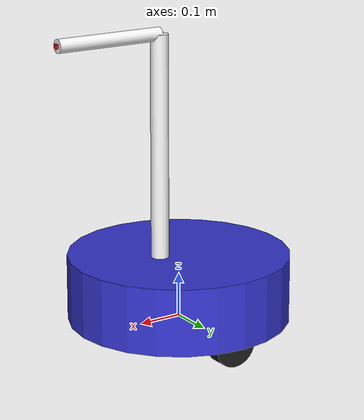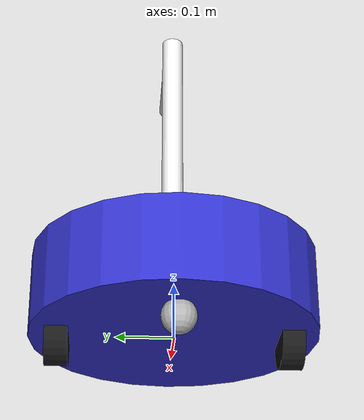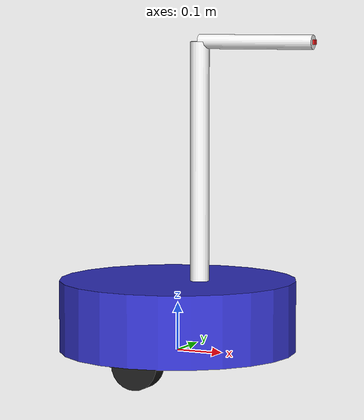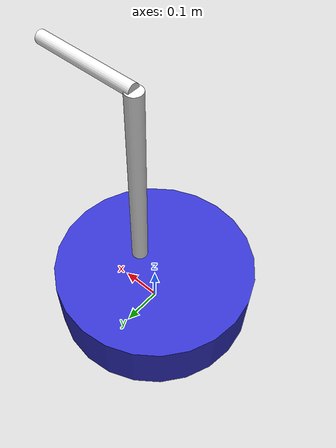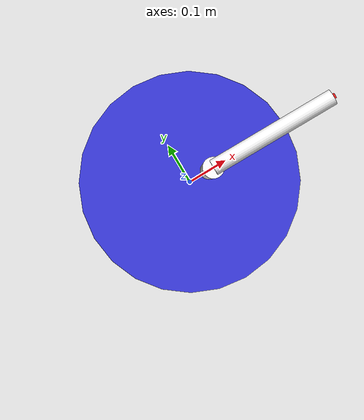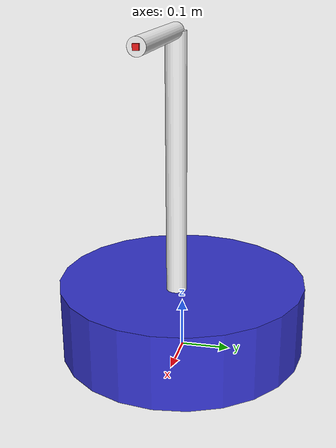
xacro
<?xml version="1.0"?>
<robot xmlns:xacro="http://ros.org/wiki/xacro" name="r2c_test_robot">

  <!-- ARGUMENTS -->
  <xacro:arg name="sim_mode" default="true" />
  <xacro:arg name="use_fake_hardware" default="false" />

  <!-- PROPERTIES - Robot dimensions and physical properties -->
  <xacro:property name="body_radius" value="0.25"/>
  <xacro:property name="body_height" value="0.15"/>
  <xacro:property name="body_mass" value="10.0"/>

  <xacro:property name="wheel_radius" value="0.05"/>
  <xacro:property name="wheel_width" value="0.04"/>
  <xacro:property name="wheel_mass" value="0.5"/>
  <xacro:property name="wheel_separation" value="0.40"/>  <!-- Distance between wheels -->

  <xacro:property name="caster_radius" value="0.03"/>
  <xacro:property name="caster_width" value="0.02"/>
  <xacro:property name="caster_mass" value="0.2"/>
  <xacro:property name="caster_offset_x" value="-0.15"/>  <!-- Behind center -->

  <xacro:property name="pole_height" value="0.5"/>
  <xacro:property name="pole_radius" value="0.02"/>
  <xacro:property name="pole_mass" value="0.5"/>

  <xacro:property name="arm_length" value="0.25"/>
  <xacro:property name="arm_radius" value="0.015"/>
  <xacro:property name="arm_mass" value="0.3"/>

  <xacro:property name="sensor_size" value="0.01"/>  <!-- 10mm cube -->
  <xacro:property name="sensor_mass" value="0.01"/>

  <!-- Include macros for inertial calculations -->
  <xacro:include filename="$(find r2c_tutorial)/urdf/inertial_macros.xacro"/>

  <!-- Include ros2_control description -->
  <xacro:include filename="$(find r2c_tutorial)/urdf/r2c_test.ros2_control.xacro"/>

  <!-- Include Gazebo-specific configurations -->
  <xacro:include filename="$(find r2c_tutorial)/urdf/r2c_test.gazebo.xacro"/>

  <!-- Include sensor macros -->
  <xacro:include filename="$(find r2c_tutorial)/urdf/sensors.xacro"/>

  <!-- MATERIALS -->
  <material name="blue">
    <color rgba="0.2 0.2 0.8 1.0"/>
  </material>

  <material name="black">
    <color rgba="0.1 0.1 0.1 1.0"/>
  </material>

  <material name="gray">
    <color rgba="0.7 0.7 0.7 1.0"/>
  </material>

  <material name="red">
    <color rgba="0.9 0.1 0.1 1.0"/>
  </material>

  <material name="white">
    <color rgba="0.95 0.95 0.95 1.0"/>
  </material>

  <!-- BASE LINK (required by ROS conventions) -->
  <link name="base_link"/>

  <!-- BASE FOOTPRINT (ground contact point) -->
  <link name="base_footprint"/>

  <joint name="base_footprint_joint" type="fixed">
    <parent link="base_link"/>
    <child link="base_footprint"/>
    <origin xyz="0 0 ${-wheel_radius}" rpy="0 0 0"/>
  </joint>

  <!-- CHASSIS (main body) -->
  <link name="chassis">
    <visual>
      <origin xyz="0 0 ${body_height/2}" rpy="0 0 0"/>
      <geometry>
        <cylinder radius="${body_radius}" length="${body_height}"/>
      </geometry>
      <material name="blue"/>
    </visual>

    <collision>
      <origin xyz="0 0 ${body_height/2}" rpy="0 0 0"/>
      <geometry>
        <cylinder radius="${body_radius}" length="${body_height}"/>
      </geometry>
    </collision>

    <xacro:inertial_cylinder mass="${body_mass}" length="${body_height}" radius="${body_radius}">
      <origin xyz="0 0 ${body_height/2}" rpy="0 0 0"/>
    </xacro:inertial_cylinder>
  </link>

  <joint name="base_to_chassis" type="fixed">
    <parent link="base_link"/>
    <child link="chassis"/>
    <origin xyz="0 0 0" rpy="0 0 0"/>
  </joint>

  <!-- LEFT WHEEL -->
  <link name="left_wheel">
    <visual>
      <geometry>
        <cylinder radius="${wheel_radius}" length="${wheel_width}"/>
      </geometry>
      <material name="black"/>
    </visual>

    <collision>
      <geometry>
        <cylinder radius="${wheel_radius}" length="${wheel_width}"/>
      </geometry>
    </collision>

    <xacro:inertial_cylinder mass="${wheel_mass}" length="${wheel_width}" radius="${wheel_radius}">
      <origin xyz="0 0 0" rpy="0 0 0"/>
    </xacro:inertial_cylinder>
  </link>

  <joint name="left_wheel_joint" type="continuous">
    <parent link="base_link"/>
    <child link="left_wheel"/>
    <origin xyz="0 ${wheel_separation/2} 0" rpy="${-pi/2} 0 0"/>
    <axis xyz="0 0 1"/>
  </joint>

  <!-- RIGHT WHEEL -->
  <link name="right_wheel">
    <visual>
      <geometry>
        <cylinder radius="${wheel_radius}" length="${wheel_width}"/>
      </geometry>
      <material name="black"/>
    </visual>

    <collision>
      <geometry>
        <cylinder radius="${wheel_radius}" length="${wheel_width}"/>
      </geometry>
    </collision>

    <xacro:inertial_cylinder mass="${wheel_mass}" length="${wheel_width}" radius="${wheel_radius}">
      <origin xyz="0 0 0" rpy="0 0 0"/>
    </xacro:inertial_cylinder>
  </link>

  <joint name="right_wheel_joint" type="continuous">
    <parent link="base_link"/>
    <child link="right_wheel"/>
    <origin xyz="0 ${-wheel_separation/2} 0" rpy="${-pi/2} 0 0"/>
    <axis xyz="0 0 1"/>
  </joint>

  <!-- CASTER WHEEL (fixed, non-actuated) -->
  <link name="caster_wheel">
    <visual>
      <geometry>
        <sphere radius="${caster_radius}"/>
      </geometry>
      <material name="gray"/>
    </visual>

    <collision>
      <geometry>
        <sphere radius="${caster_radius}"/>
      </geometry>
    </collision>

    <xacro:inertial_sphere mass="${caster_mass}" radius="${caster_radius}">
      <origin xyz="0 0 0" rpy="0 0 0"/>
    </xacro:inertial_sphere>
  </link>

  <joint name="caster_wheel_joint" type="fixed">
    <parent link="base_link"/>
    <child link="caster_wheel"/>
    <origin xyz="${caster_offset_x} 0 ${-wheel_radius + caster_radius}" rpy="0 0 0"/>
  </joint>

  <!-- VERTICAL POLE (for arm mounting) -->
  <link name="vertical_pole">
    <visual>
      <origin xyz="0 0 ${pole_height/2}" rpy="0 0 0"/>
      <geometry>
        <cylinder radius="${pole_radius}" length="${pole_height}"/>
      </geometry>
      <material name="white"/>
    </visual>

    <collision>
      <origin xyz="0 0 ${pole_height/2}" rpy="0 0 0"/>
      <geometry>
        <cylinder radius="${pole_radius}" length="${pole_height}"/>
      </geometry>
    </collision>

    <xacro:inertial_cylinder mass="${pole_mass}" length="${pole_height}" radius="${pole_radius}">
      <origin xyz="0 0 ${pole_height/2}" rpy="0 0 0"/>
    </xacro:inertial_cylinder>
  </link>

  <joint name="pole_to_chassis" type="fixed">
    <parent link="chassis"/>
    <child link="vertical_pole"/>
    <origin xyz="0.05 0 ${body_height}" rpy="0 0 0"/>
  </joint>

  <!-- ARM LINK (1-DOF rotational actuator) -->
  <link name="arm">
    <visual>
      <origin xyz="${arm_length/2} 0 0" rpy="0 ${pi/2} 0"/>
      <geometry>
        <cylinder radius="${arm_radius}" length="${arm_length}"/>
      </geometry>
      <material name="white"/>
    </visual>

    <collision>
      <origin xyz="${arm_length/2} 0 0" rpy="0 ${pi/2} 0"/>
      <geometry>
        <cylinder radius="${arm_radius}" length="${arm_length}"/>
      </geometry>
    </collision>

    <xacro:inertial_cylinder mass="${arm_mass}" length="${arm_length}" radius="${arm_radius}">
      <origin xyz="${arm_length/2} 0 0" rpy="0 ${pi/2} 0"/>
    </xacro:inertial_cylinder>
  </link>

  <joint name="arm_joint" type="revolute">
    <parent link="vertical_pole"/>
    <child link="arm"/>
    <origin xyz="0 0 ${pole_height}" rpy="0 0 0"/>
    <axis xyz="0 0 1"/>  <!-- Rotates around Z (vertical) axis -->
    <limit effort="10.0" lower="${-pi}" upper="${pi}" velocity="2.0"/>
  </joint>

  <!-- TEMPERATURE SENSOR (at end of arm) -->
  <link name="temperature_sensor">
    <visual>
      <geometry>
        <box size="${sensor_size} ${sensor_size} ${sensor_size}"/>
      </geometry>
      <material name="red"/>
    </visual>

    <collision>
      <geometry>
        <box size="${sensor_size} ${sensor_size} ${sensor_size}"/>
      </geometry>
    </collision>

    <xacro:inertial_box mass="${sensor_mass}" x="${sensor_size}" y="${sensor_size}" z="${sensor_size}">
      <origin xyz="0 0 0" rpy="0 0 0"/>
    </xacro:inertial_box>
  </link>

  <joint name="sensor_to_arm" type="fixed">
    <parent link="arm"/>
    <child link="temperature_sensor"/>
    <origin xyz="${arm_length} 0 0" rpy="0 0 0"/>
  </joint>

</robot>

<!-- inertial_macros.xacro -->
<robot xmlns:xacro="http://www.ros.org/wiki/xacro">

  <!-- Inertial macro for a solid cylinder -->
  <xacro:macro name="inertial_cylinder" params="mass length radius *origin">
    <inertial>
      <xacro:insert_block name="origin"/>
      <mass value="${mass}"/>
      <inertia ixx="${(1/12) * mass * (3*radius*radius + length*length)}" ixy="0.0" ixz="0.0"
               iyy="${(1/12) * mass * (3*radius*radius + length*length)}" iyz="0.0"
               izz="${(1/2) * mass * (radius*radius)}"/>
    </inertial>
  </xacro:macro>

  <!-- Inertial macro for a sphere -->
  <xacro:macro name="inertial_sphere" params="mass radius *origin">
    <inertial>
      <xacro:insert_block name="origin"/>
      <mass value="${mass}"/>
      <inertia ixx="${(2/5) * mass * (radius*radius)}" ixy="0.0" ixz="0.0"
               iyy="${(2/5) * mass * (radius*radius)}" iyz="0.0"
               izz="${(2/5) * mass * (radius*radius)}"/>
    </inertial>
  </xacro:macro>

  <!-- Inertial macro for a box -->
  <xacro:macro name="inertial_box" params="mass x y z *origin">
    <inertial>
      <xacro:insert_block name="origin"/>
      <mass value="${mass}"/>
      <inertia ixx="${(1/12) * mass * (y*y+z*z)}" ixy="0.0" ixz="0.0"
               iyy="${(1/12) * mass * (x*x+z*z)}" iyz="0.0"
               izz="${(1/12) * mass * (x*x+y*y)}"/>
    </inertial>
  </xacro:macro>

</robot>
